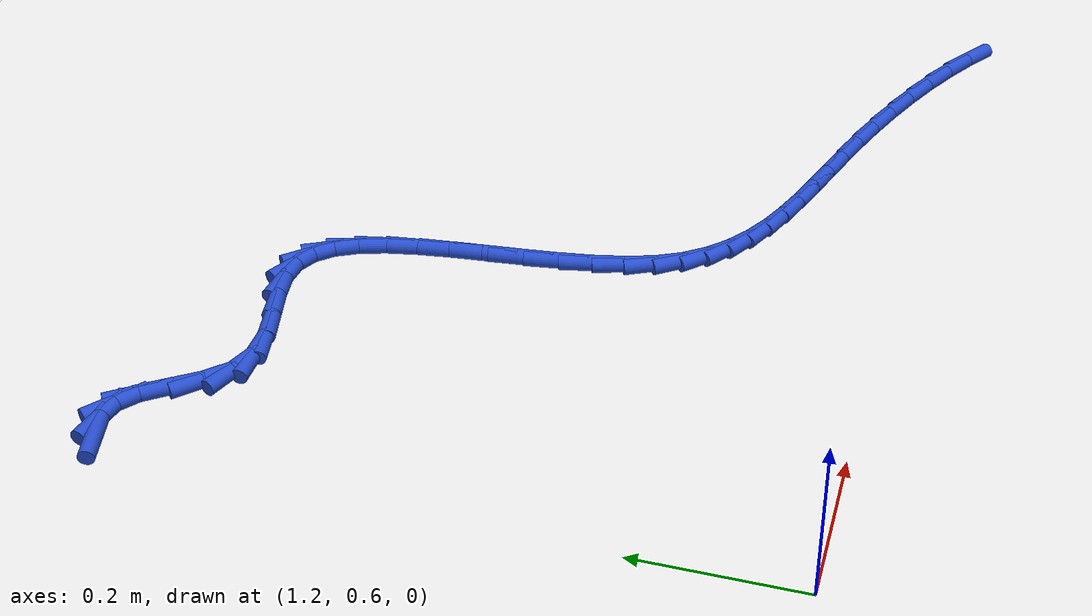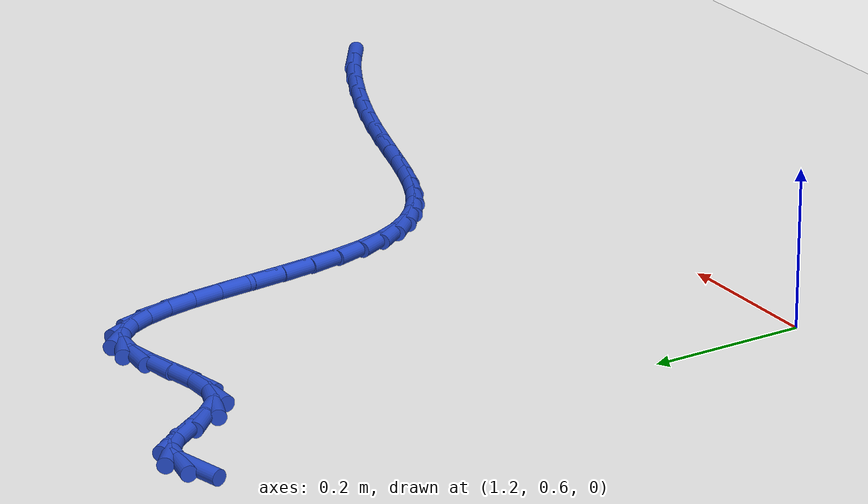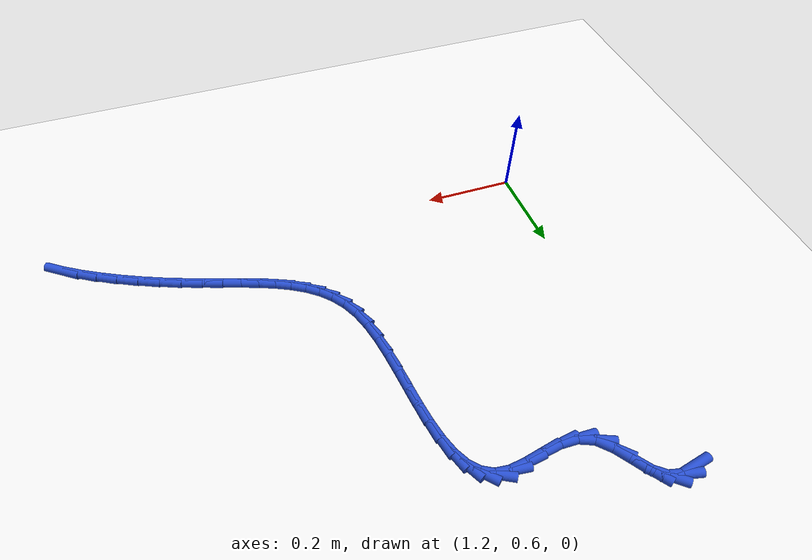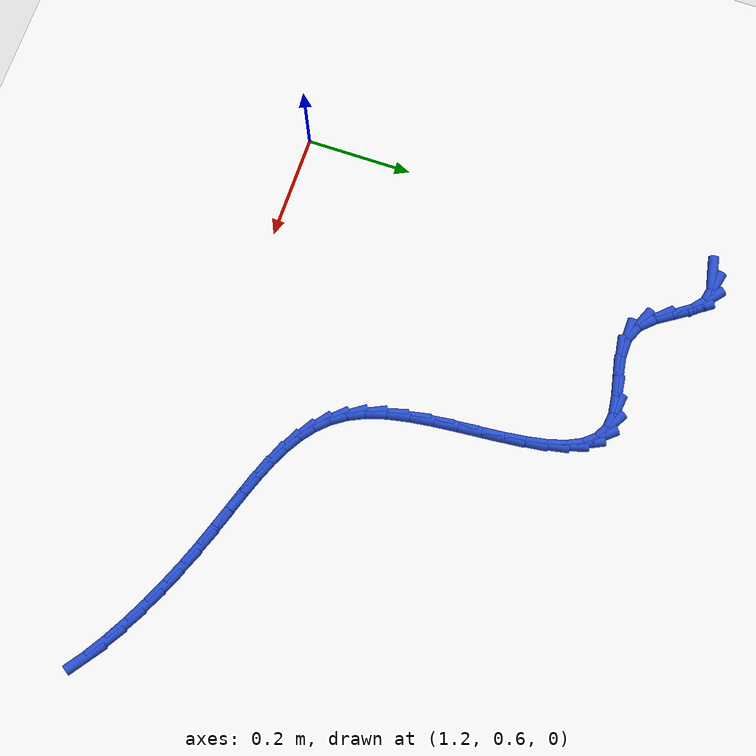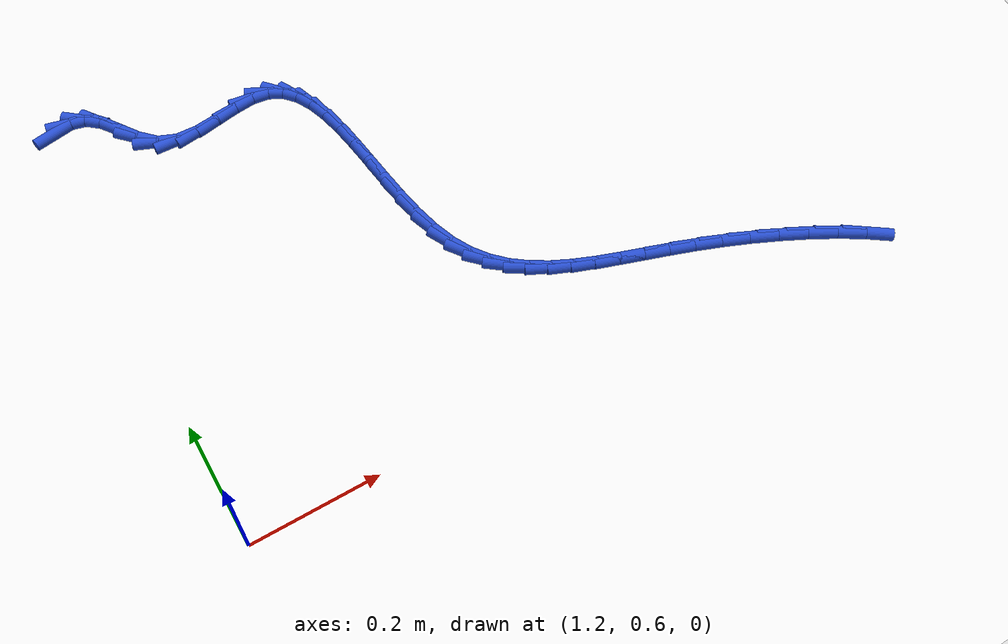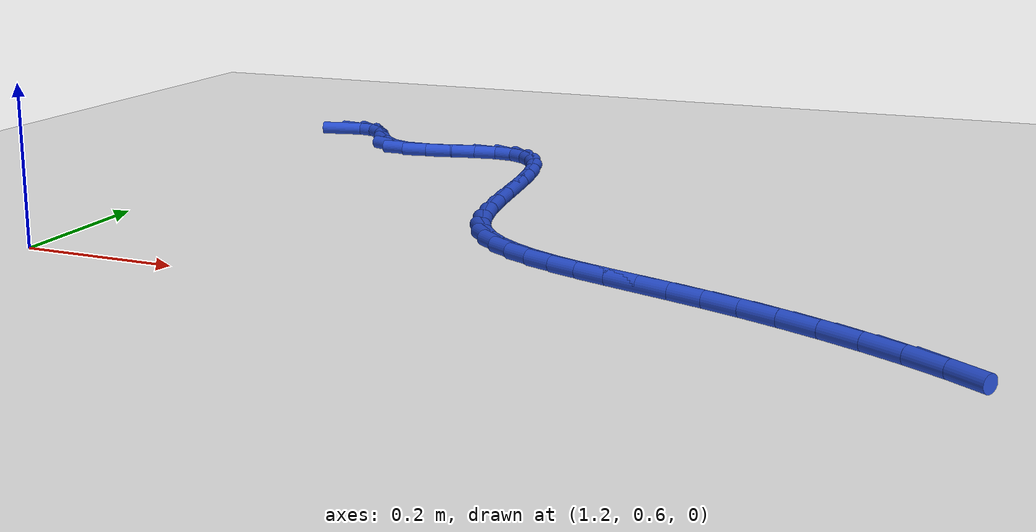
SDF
<sdf version="1.6">
 <world name="default">
  <model name="ground_plane">
   <static>1</static>
   <link name="link">
    <collision name="collision">
     <geometry><plane><normal>0 0 1</normal><size>100 100</size></plane></geometry>
     <surface><friction><ode><mu>100</mu><mu2>50</mu2></ode></friction></surface>
    </collision>
    <visual name="visual">
     <cast_shadows>0</cast_shadows>
     <geometry><plane><normal>0 0 1</normal><size>100 100</size></plane></geometry>
     <material>
      <script><uri>file://media/materials/scripts/gazebo.material</uri><name>Gazebo/WhiteGlow</name></script>
     </material>
    </visual>
   </link>
  </model>
  <model name="line">
   <link name="link_67">
    <pose>1.2239742873376431 1.3998898001528228 0.01 0 1.57 0.21178402159248386</pose>
    <collision name="collision">
     <geometry><cylinder><radius>0.01</radius><length>0.08</length></cylinder></geometry>
    </collision>
    <visual name="visual">
     <material>
      <script><name>Gazebo/Blue</name><uri>file://media/materials/scripts/gazebo.material</uri></script>
     </material>
     <geometry><cylinder><radius>0.01</radius><length>0.08</length></cylinder></geometry>
    </visual>
   </link>
   <link name="link_68">
    <pose>1.2502708637746887 1.405543780375802 0.01 0 1.57 -0.22081283865315665</pose>
    <collision name="collision">
     <geometry><cylinder><radius>0.01</radius><length>0.08</length></cylinder></geometry>
    </collision>
    <visual name="visual">
     <material>
      <script><name>Gazebo/Blue</name><uri>file://media/materials/scripts/gazebo.material</uri></script>
     </material>
     <geometry><cylinder><radius>0.01</radius><length>0.08</length></cylinder></geometry>
    </visual>
   </link>
   <link name="link_69">
    <pose>1.2743579228493735 1.4001368844696538 0.01 0 1.57 -0.6941857394826021</pose>
    <collision name="collision">
     <geometry><cylinder><radius>0.01</radius><length>0.08</length></cylinder></geometry>
    </collision>
    <visual name="visual">
     <material>
      <script><name>Gazebo/Blue</name><uri>file://media/materials/scripts/gazebo.material</uri></script>
     </material>
     <geometry><cylinder><radius>0.01</radius><length>0.08</length></cylinder></geometry>
    </visual>
   </link>
   <link name="link_70">
    <pose>1.2959192571117595 1.3821892832723301 0.01 0 1.57 -0.9649128676225501</pose>
    <collision name="collision">
     <geometry><cylinder><radius>0.01</radius><length>0.08</length></cylinder></geometry>
    </collision>
    <visual name="visual">
     <material>
      <script><name>Gazebo/Blue</name><uri>file://media/materials/scripts/gazebo.material</uri></script>
     </material>
     <geometry><cylinder><radius>0.01</radius><length>0.08</length></cylinder></geometry>
    </visual>
   </link>
   <link name="link_71">
    <pose>1.3157086220847654 1.3536253279100277 0.01 0 1.57 -0.9877866875722</pose>
    <collision name="collision">
     <geometry><cylinder><radius>0.01</radius><length>0.08</length></cylinder></geometry>
    </collision>
    <visual name="visual">
     <material>
      <script><name>Gazebo/Blue</name><uri>file://media/materials/scripts/gazebo.material</uri></script>
     </material>
     <geometry><cylinder><radius>0.01</radius><length>0.08</length></cylinder></geometry>
    </visual>
   </link>
   <link name="link_72">
    <pose>1.336351303079276 1.3223238043582621 0.01 0 1.57 -0.8104522829435831</pose>
    <collision name="collision">
     <geometry><cylinder><radius>0.01</radius><length>0.08</length></cylinder></geometry>
    </collision>
    <visual name="visual">
     <material>
      <script><name>Gazebo/Blue</name><uri>file://media/materials/scripts/gazebo.material</uri></script>
     </material>
     <geometry><cylinder><radius>0.01</radius><length>0.08</length></cylinder></geometry>
    </visual>
   </link>
   <link name="link_73">
    <pose>1.3606613458563237 1.29676405638744 0.01 0 1.57 -0.38947602959020744</pose>
    <collision name="collision">
     <geometry><cylinder><radius>0.01</radius><length>0.08</length></cylinder></geometry>
    </collision>
    <visual name="visual">
     <material>
      <script><name>Gazebo/Blue</name><uri>file://media/materials/scripts/gazebo.material</uri></script>
     </material>
     <geometry><cylinder><radius>0.01</radius><length>0.08</length></cylinder></geometry>
    </visual>
   </link>
   <link name="link_74">
    <pose>1.391003143017209 1.2843104919918247 0.01 0 1.57 -0.01412070616003594</pose>
    <collision name="collision">
     <geometry><cylinder><radius>0.01</radius><length>0.08</length></cylinder></geometry>
    </collision>
    <visual name="visual">
     <material>
      <script><name>Gazebo/Blue</name><uri>file://media/materials/scripts/gazebo.material</uri></script>
     </material>
     <geometry><cylinder><radius>0.01</radius><length>0.08</length></cylinder></geometry>
    </visual>
   </link>
   <link name="link_75">
    <pose>1.4263067602000676 1.2838119468510651 0.01 0 1.57 0.16797901482678385</pose>
    <collision name="collision">
     <geometry><cylinder><radius>0.01</radius><length>0.08</length></cylinder></geometry>
    </collision>
    <visual name="visual">
     <material>
      <script><name>Gazebo/Blue</name><uri>file://media/materials/scripts/gazebo.material</uri></script>
     </material>
     <geometry><cylinder><radius>0.01</radius><length>0.08</length></cylinder></geometry>
    </visual>
   </link>
   <link name="link_76">
    <pose>1.463918409094537 1.290190017631495 0.01 0 1.57 0.2154909738947477</pose>
    <collision name="collision">
     <geometry><cylinder><radius>0.01</radius><length>0.08</length></cylinder></geometry>
    </collision>
    <visual name="visual">
     <material>
      <script><name>Gazebo/Blue</name><uri>file://media/materials/scripts/gazebo.material</uri></script>
     </material>
     <geometry><cylinder><radius>0.01</radius><length>0.08</length></cylinder></geometry>
    </visual>
   </link>
   <link name="link_77">
    <pose>1.5011758237486075 1.2983452802954552 0.01 0 1.57 0.14022152106259778</pose>
    <collision name="collision">
     <geometry><cylinder><radius>0.01</radius><length>0.08</length></cylinder></geometry>
    </collision>
    <visual name="visual">
     <material>
      <script><name>Gazebo/Blue</name><uri>file://media/materials/scripts/gazebo.material</uri></script>
     </material>
     <geometry><cylinder><radius>0.01</radius><length>0.08</length></cylinder></geometry>
    </visual>
   </link>
   <link name="link_78">
    <pose>1.5354167382102701 1.303178310805286 0.01 0 1.57 -0.11302055794018194</pose>
    <collision name="collision">
     <geometry><cylinder><radius>0.01</radius><length>0.08</length></cylinder></geometry>
    </collision>
    <visual name="visual">
     <material>
      <script><name>Gazebo/Blue</name><uri>file://media/materials/scripts/gazebo.material</uri></script>
     </material>
     <geometry><cylinder><radius>0.01</radius><length>0.08</length></cylinder></geometry>
    </visual>
   </link>
   <link name="link_79">
    <pose>1.5641594760900193 1.2999158876764405 0.01 0 1.57 -0.5014226133366396</pose>
    <collision name="collision">
     <geometry><cylinder><radius>0.01</radius><length>0.08</length></cylinder></geometry>
    </collision>
    <visual name="visual">
     <material>
      <script><name>Gazebo/Blue</name><uri>file://media/materials/scripts/gazebo.material</uri></script>
     </material>
     <geometry><cylinder><radius>0.01</radius><length>0.08</length></cylinder></geometry>
    </visual>
   </link>
   <link name="link_80">
    <pose>1.58693975655966 1.2874288515374368 0.01 0 1.57 -0.8622864179675416</pose>
    <collision name="collision">
     <geometry><cylinder><radius>0.01</radius><length>0.08</length></cylinder></geometry>
    </collision>
    <visual name="visual">
     <material>
      <script><name>Gazebo/Blue</name><uri>file://media/materials/scripts/gazebo.material</uri></script>
     </material>
     <geometry><cylinder><radius>0.01</radius><length>0.08</length></cylinder></geometry>
    </visual>
   </link>
   <link name="link_81">
    <pose>1.6045569556157657 1.2668706117144601 0.01 0 1.57 -1.1202815809775835</pose>
    <collision name="collision">
     <geometry><cylinder><radius>0.01</radius><length>0.08</length></cylinder></geometry>
    </collision>
    <visual name="visual">
     <material>
      <script><name>Gazebo/Blue</name><uri>file://media/materials/scripts/gazebo.material</uri></script>
     </material>
     <geometry><cylinder><radius>0.01</radius><length>0.08</length></cylinder></geometry>
    </visual>
   </link>
   <link name="link_82">
    <pose>1.6178298715664245 1.2394296604449935 0.01 0 1.57 -1.2846950885610895</pose>
    <collision name="collision">
     <geometry><cylinder><radius>0.01</radius><length>0.08</length></cylinder></geometry>
    </collision>
    <visual name="visual">
     <material>
      <script><name>Gazebo/Blue</name><uri>file://media/materials/scripts/gazebo.material</uri></script>
     </material>
     <geometry><cylinder><radius>0.01</radius><length>0.08</length></cylinder></geometry>
    </visual>
   </link>
   <link name="link_83">
    <pose>1.6275773027197216 1.2062944899665193 0.01 0 1.57 -1.385882749394482</pose>
    <collision name="collision">
     <geometry><cylinder><radius>0.01</radius><length>0.08</length></cylinder></geometry>
    </collision>
    <visual name="visual">
     <material>
      <script><name>Gazebo/Blue</name><uri>file://media/materials/scripts/gazebo.material</uri></script>
     </material>
     <geometry><cylinder><radius>0.01</radius><length>0.08</length></cylinder></geometry>
    </visual>
   </link>
   <link name="link_84">
    <pose>1.6346180473837433 1.1686535925165196 0.01 0 1.57 -1.4456459435034161</pose>
    <collision name="collision">
     <geometry><cylinder><radius>0.01</radius><length>0.08</length></cylinder></geometry>
    </collision>
    <visual name="visual">
     <material>
      <script><name>Gazebo/Blue</name><uri>file://media/materials/scripts/gazebo.material</uri></script>
     </material>
     <geometry><cylinder><radius>0.01</radius><length>0.08</length></cylinder></geometry>
    </visual>
   </link>
   <link name="link_85">
    <pose>1.6397709038665766 1.1276954603324778 0.01 0 1.57 -1.4762987871623152</pose>
    <collision name="collision">
     <geometry><cylinder><radius>0.01</radius><length>0.08</length></cylinder></geometry>
    </collision>
    <visual name="visual">
     <material>
      <script><name>Gazebo/Blue</name><uri>file://media/materials/scripts/gazebo.material</uri></script>
     </material>
     <geometry><cylinder><radius>0.01</radius><length>0.08</length></cylinder></geometry>
    </visual>
   </link>
   <link name="link_86">
    <pose>1.6438546704763084 1.0846085856518766 0.01 0 1.57 -1.4839446124559028</pose>
    <collision name="collision">
     <geometry><cylinder><radius>0.01</radius><length>0.08</length></cylinder></geometry>
    </collision>
    <visual name="visual">
     <material>
      <script><name>Gazebo/Blue</name><uri>file://media/materials/scripts/gazebo.material</uri></script>
     </material>
     <geometry><cylinder><radius>0.01</radius><length>0.08</length></cylinder></geometry>
    </visual>
   </link>
   <link name="link_87">
    <pose>1.6476881455210237 1.0405814607121977 0.01 0 1.57 -1.4705828079552412</pose>
    <collision name="collision">
     <geometry><cylinder><radius>0.01</radius><length>0.08</length></cylinder></geometry>
    </collision>
    <visual name="visual">
     <material>
      <script><name>Gazebo/Blue</name><uri>file://media/materials/scripts/gazebo.material</uri></script>
     </material>
     <geometry><cylinder><radius>0.01</radius><length>0.08</length></cylinder></geometry>
    </visual>
   </link>
   <link name="link_88">
    <pose>1.6520901273088098 0.9968025777509251 0.01 0 1.57 -1.4349125521714978</pose>
    <collision name="collision">
     <geometry><cylinder><radius>0.01</radius><length>0.08</length></cylinder></geometry>
    </collision>
    <visual name="visual">
     <material>
      <script><name>Gazebo/Blue</name><uri>file://media/materials/scripts/gazebo.material</uri></script>
     </material>
     <geometry><cylinder><radius>0.01</radius><length>0.08</length></cylinder></geometry>
    </visual>
   </link>
   <link name="link_89">
    <pose>1.6578794141477533 0.95446042900554 0.01 0 1.57 -1.3721420363830048</pose>
    <collision name="collision">
     <geometry><cylinder><radius>0.01</radius><length>0.08</length></cylinder></geometry>
    </collision>
    <visual name="visual">
     <material>
      <script><name>Gazebo/Blue</name><uri>file://media/materials/scripts/gazebo.material</uri></script>
     </material>
     <geometry><cylinder><radius>0.01</radius><length>0.08</length></cylinder></geometry>
    </visual>
   </link>
   <link name="link_90">
    <pose>1.6658748043459397 0.9147435067135256 0.01 0 1.57 -1.272980646012828</pose>
    <collision name="collision">
     <geometry><cylinder><radius>0.01</radius><length>0.08</length></cylinder></geometry>
    </collision>
    <visual name="visual">
     <material>
      <script><name>Gazebo/Blue</name><uri>file://media/materials/scripts/gazebo.material</uri></script>
     </material>
     <geometry><cylinder><radius>0.01</radius><length>0.08</length></cylinder></geometry>
    </visual>
   </link>
   <link name="link_91">
    <pose>1.6768950962114566 0.8788403031123646 0.01 0 1.57 -1.1290563871730845</pose>
    <collision name="collision">
     <geometry><cylinder><radius>0.01</radius><length>0.08</length></cylinder></geometry>
    </collision>
    <visual name="visual">
     <material>
      <script><name>Gazebo/Blue</name><uri>file://media/materials/scripts/gazebo.material</uri></script>
     </material>
     <geometry><cylinder><radius>0.01</radius><length>0.08</length></cylinder></geometry>
    </visual>
   </link>
   <link name="link_92">
    <pose>1.6916205904512926 0.8477021130992067 0.01 0 1.57 -0.9656992763505845</pose>
    <collision name="collision">
     <geometry><cylinder><radius>0.01</radius><length>0.08</length></cylinder></geometry>
    </collision>
    <visual name="visual">
     <material>
      <script><name>Gazebo/Blue</name><uri>file://media/materials/scripts/gazebo.material</uri></script>
     </material>
     <geometry><cylinder><radius>0.01</radius><length>0.08</length></cylinder></geometry>
    </visual>
   </link>
   <link name="link_93">
    <pose>1.7100321004130525 0.8210822574552012 0.01 0 1.57 -0.8048539356517859</pose>
    <collision name="collision">
     <geometry><cylinder><radius>0.01</radius><length>0.08</length></cylinder></geometry>
    </collision>
    <visual name="visual">
     <material>
      <script><name>Gazebo/Blue</name><uri>file://media/materials/scripts/gazebo.material</uri></script>
     </material>
     <geometry><cylinder><radius>0.01</radius><length>0.08</length></cylinder></geometry>
    </visual>
   </link>
   <link name="link_94">
    <pose>1.731890117496468 0.7983567234940693 0.01 0 1.57 -0.6600584421691186</pose>
    <collision name="collision">
     <geometry><cylinder><radius>0.01</radius><length>0.08</length></cylinder></geometry>
    </collision>
    <visual name="visual">
     <material>
      <script><name>Gazebo/Blue</name><uri>file://media/materials/scripts/gazebo.material</uri></script>
     </material>
     <geometry><cylinder><radius>0.01</radius><length>0.08</length></cylinder></geometry>
    </visual>
   </link>
   <link name="link_95">
    <pose>1.7569550511011323 0.7789013580923365 0.01 0 1.57 -0.5401570052938593</pose>
    <collision name="collision">
     <geometry><cylinder><radius>0.01</radius><length>0.08</length></cylinder></geometry>
    </collision>
    <visual name="visual">
     <material>
      <script><name>Gazebo/Blue</name><uri>file://media/materials/scripts/gazebo.material</uri></script>
     </material>
     <geometry><cylinder><radius>0.01</radius><length>0.08</length></cylinder></geometry>
    </visual>
   </link>
   <link name="link_96">
    <pose>1.7849873106266405 0.7620920081265299 0.01 0 1.57 -0.4481193235439318</pose>
    <collision name="collision">
     <geometry><cylinder><radius>0.01</radius><length>0.08</length></cylinder></geometry>
    </collision>
    <visual name="visual">
     <material>
      <script><name>Gazebo/Blue</name><uri>file://media/materials/scripts/gazebo.material</uri></script>
     </material>
     <geometry><cylinder><radius>0.01</radius><length>0.08</length></cylinder></geometry>
    </visual>
   </link>
   <link name="link_97">
    <pose>1.815747305472585 0.7473045204731746 0.01 0 1.57 -0.3828512727862995</pose>
    <collision name="collision">
     <geometry><cylinder><radius>0.01</radius><length>0.08</length></cylinder></geometry>
    </collision>
    <visual name="visual">
     <material>
      <script><name>Gazebo/Blue</name><uri>file://media/materials/scripts/gazebo.material</uri></script>
     </material>
     <geometry><cylinder><radius>0.01</radius><length>0.08</length></cylinder></geometry>
    </visual>
   </link>
   <link name="link_98">
    <pose>1.8489954450385602 0.7339147420087975 0.01 0 1.57 -0.3414948316219899</pose>
    <collision name="collision">
     <geometry><cylinder><radius>0.01</radius><length>0.08</length></cylinder></geometry>
    </collision>
    <visual name="visual">
     <material>
      <script><name>Gazebo/Blue</name><uri>file://media/materials/scripts/gazebo.material</uri></script>
     </material>
     <geometry><cylinder><radius>0.01</radius><length>0.08</length></cylinder></geometry>
    </visual>
   </link>
   <link name="link_99">
    <pose>1.8844921387241595 0.7212985196099246 0.01 0 1.57 -0.3209088547766709</pose>
    <collision name="collision">
     <geometry><cylinder><radius>0.01</radius><length>0.08</length></cylinder></geometry>
    </collision>
    <visual name="visual">
     <material>
      <script><name>Gazebo/Blue</name><uri>file://media/materials/scripts/gazebo.material</uri></script>
     </material>
     <geometry><cylinder><radius>0.01</radius><length>0.08</length></cylinder></geometry>
    </visual>
   </link>
   <link name="link_100">
    <pose>1.9219977959289776 0.7088317001530821 0.01 0 1.57 -0.3183068675377617</pose>
    <collision name="collision">
     <geometry><cylinder><radius>0.01</radius><length>0.08</length></cylinder></geometry>
    </collision>
    <visual name="visual">
     <material>
      <script><name>Gazebo/Blue</name><uri>file://media/materials/scripts/gazebo.material</uri></script>
     </material>
     <geometry><cylinder><radius>0.01</radius><length>0.08</length></cylinder></geometry>
    </visual>
   </link>
   <link name="link_101">
    <pose>1.9612728260526078 0.6958901305147958 0.01 0 1.57 -0.33139891025345125</pose>
    <collision name="collision">
     <geometry><cylinder><radius>0.01</radius><length>0.08</length></cylinder></geometry>
    </collision>
    <visual name="visual">
     <material>
      <script><name>Gazebo/Blue</name><uri>file://media/materials/scripts/gazebo.material</uri></script>
     </material>
     <geometry><cylinder><radius>0.01</radius><length>0.08</length></cylinder></geometry>
    </visual>
   </link>
   <link name="link_102">
    <pose>2.002077638494643 0.6818496575715923 0.01 0 1.57 -0.35810683602205395</pose>
    <collision name="collision">
     <geometry><cylinder><radius>0.01</radius><length>0.08</length></cylinder></geometry>
    </collision>
    <visual name="visual">
     <material>
      <script><name>Gazebo/Blue</name><uri>file://media/materials/scripts/gazebo.material</uri></script>
     </material>
     <geometry><cylinder><radius>0.01</radius><length>0.08</length></cylinder></geometry>
    </visual>
   </link>
   <link name="link_103">
    <pose>2.0441619638536173 0.6660998932955053 0.01 0 1.57 -0.3914521278080904</pose>
    <collision name="collision">
     <geometry><cylinder><radius>0.01</radius><length>0.08</length></cylinder></geometry>
    </collision>
    <visual name="visual">
     <material>
      <script><name>Gazebo/Blue</name><uri>file://media/materials/scripts/gazebo.material</uri></script>
     </material>
     <geometry><cylinder><radius>0.01</radius><length>0.08</length></cylinder></geometry>
    </visual>
   </link>
   <link name="link_104">
    <pose>2.0869626445920155 0.648433766009459 0.01 0 1.57 -0.42601176607664976</pose>
    <collision name="collision">
     <geometry><cylinder><radius>0.01</radius><length>0.08</length></cylinder></geometry>
    </collision>
    <visual name="visual">
     <material>
      <script><name>Gazebo/Blue</name><uri>file://media/materials/scripts/gazebo.material</uri></script>
     </material>
     <geometry><cylinder><radius>0.01</radius><length>0.08</length></cylinder></geometry>
    </visual>
   </link>
   <link name="link_105">
    <pose>2.129560953220125 0.6291025377316714 0.01 0 1.57 -0.46347908112339936</pose>
    <collision name="collision">
     <geometry><cylinder><radius>0.01</radius><length>0.08</length></cylinder></geometry>
    </collision>
    <visual name="visual">
     <material>
      <script><name>Gazebo/Blue</name><uri>file://media/materials/scripts/gazebo.material</uri></script>
     </material>
     <geometry><cylinder><radius>0.01</radius><length>0.08</length></cylinder></geometry>
    </visual>
   </link>
   <link name="link_106">
    <pose>2.171018903301743 0.608382295480497 0.01 0 1.57 -0.5062367317430765</pose>
    <collision name="collision">
     <geometry><cylinder><radius>0.01</radius><length>0.08</length></cylinder></geometry>
    </collision>
    <visual name="visual">
     <material>
      <script><name>Gazebo/Blue</name><uri>file://media/materials/scripts/gazebo.material</uri></script>
     </material>
     <geometry><cylinder><radius>0.01</radius><length>0.08</length></cylinder></geometry>
    </visual>
   </link>
   <link name="link_107">
    <pose>2.210398508400665 0.5865491262742909 0.01 0 1.57 -0.5574705880077908</pose>
    <collision name="collision">
     <geometry><cylinder><radius>0.01</radius><length>0.08</length></cylinder></geometry>
    </collision>
    <visual name="visual">
     <material>
      <script><name>Gazebo/Blue</name><uri>file://media/materials/scripts/gazebo.material</uri></script>
     </material>
     <geometry><cylinder><radius>0.01</radius><length>0.08</length></cylinder></geometry>
    </visual>
   </link>
   <link name="link_108">
    <pose>2.2467617820806884 0.5638791171314079 0.01 0 1.57 -0.6219128309701555</pose>
    <collision name="collision">
     <geometry><cylinder><radius>0.01</radius><length>0.08</length></cylinder></geometry>
    </collision>
    <visual name="visual">
     <material>
      <script><name>Gazebo/Blue</name><uri>file://media/materials/scripts/gazebo.material</uri></script>
     </material>
     <geometry><cylinder><radius>0.01</radius><length>0.08</length></cylinder></geometry>
    </visual>
   </link>
  </model>
 </world>
</sdf>
